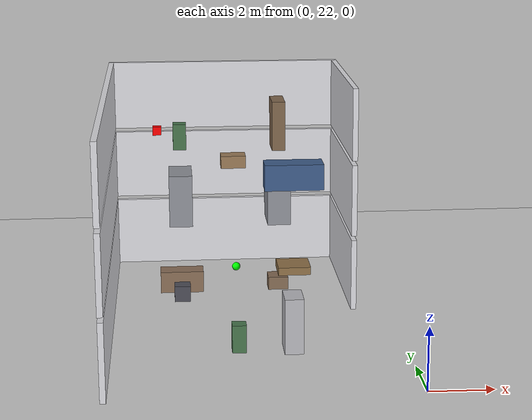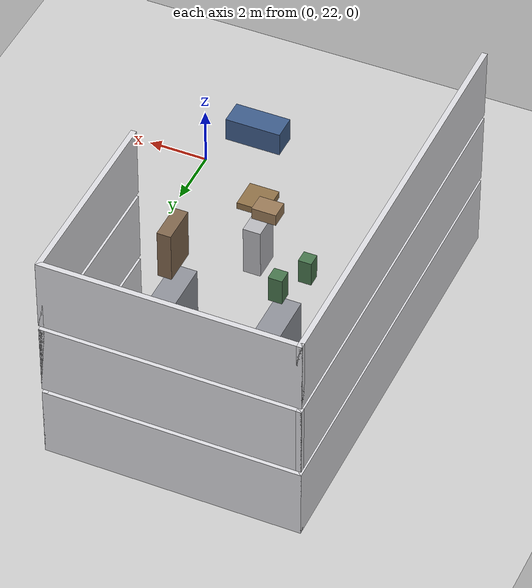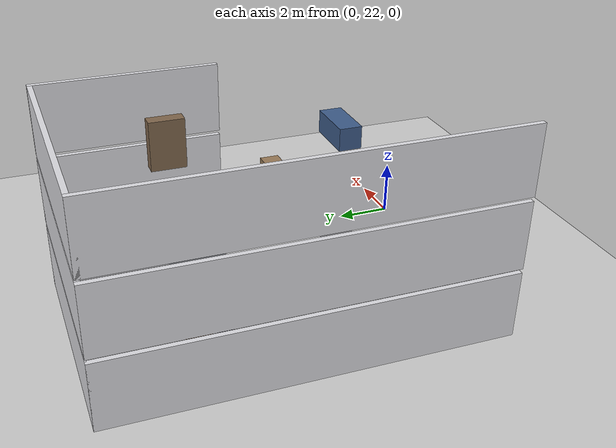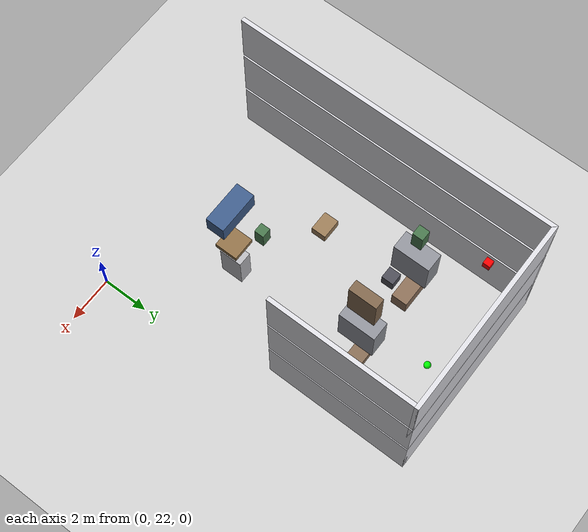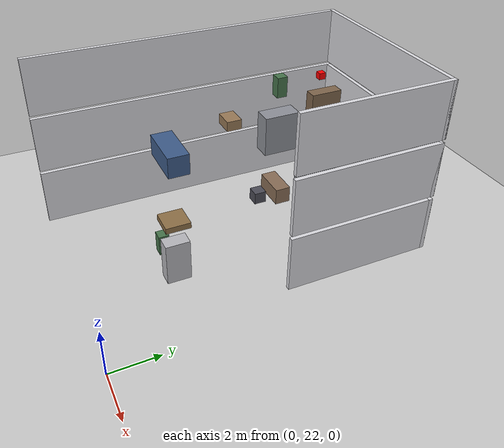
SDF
<sdf version="1.7">
 <world name="generated_world">
  <include><uri>model://sun</uri></include>
  <include><uri>model://ground_plane</uri></include>
  <model name="generated_building">
   <static>true</static>
   <link name="floor_0_room_2_corridor_wall_upper">
    <pose>-1.1900 32.7025 1.2250 0.0000 0.0000 0.0000</pose>
    <collision name="floor_0_room_2_corridor_wall_upper_collision">
     <geometry><box><size>0.1800 6.4150 2.4500</size></box></geometry>
    </collision>
    <visual name="floor_0_room_2_corridor_wall_upper_visual">
     <geometry><box><size>0.1800 6.4150 2.4500</size></box></geometry>
     <material><ambient>0.86 0.86 0.88 1</ambient><diffuse>0.86 0.86 0.88 1</diffuse></material>
    </visual>
    <gravity>false</gravity>
   </link>
   <link name="floor_0_room_2_west_wall">
    <pose>-9.4100 28.8950 1.2250 0.0000 0.0000 0.0000</pose>
    <collision name="floor_0_room_2_west_wall_collision">
     <geometry><box><size>0.1800 14.0300 2.4500</size></box></geometry>
    </collision>
    <visual name="floor_0_room_2_west_wall_visual">
     <geometry><box><size>0.1800 14.0300 2.4500</size></box></geometry>
     <material><ambient>0.86 0.86 0.88 1</ambient><diffuse>0.86 0.86 0.88 1</diffuse></material>
    </visual>
    <gravity>false</gravity>
   </link>
   <link name="floor_0_room_2_north_wall">
    <pose>-5.3000 35.8200 1.2250 0.0000 0.0000 0.0000</pose>
    <collision name="floor_0_room_2_north_wall_collision">
     <geometry><box><size>8.4000 0.1800 2.4500</size></box></geometry>
    </collision>
    <visual name="floor_0_room_2_north_wall_visual">
     <geometry><box><size>8.4000 0.1800 2.4500</size></box></geometry>
     <material><ambient>0.86 0.86 0.88 1</ambient><diffuse>0.86 0.86 0.88 1</diffuse></material>
    </visual>
    <gravity>false</gravity>
   </link>
   <link name="floor_0_room_2_desk">
    <pose>-7.0000 31.9525 0.4500 0.0000 0.0000 0.0000</pose>
    <collision name="floor_0_room_2_desk_collision">
     <geometry><box><size>1.5000 0.7000 0.7500</size></box></geometry>
    </collision>
    <visual name="floor_0_room_2_desk_visual">
     <geometry><box><size>1.5000 0.7000 0.7500</size></box></geometry>
     <material><ambient>0.54 0.43 0.34 1</ambient><diffuse>0.54 0.43 0.34 1</diffuse></material>
    </visual>
    <gravity>false</gravity>
   </link>
   <link name="floor_0_room_2_chair">
    <pose>-7.0000 31.0525 0.2800 0.0000 0.0000 0.0000</pose>
    <collision name="floor_0_room_2_chair_collision">
     <geometry><box><size>0.5500 0.5500 0.5500</size></box></geometry>
    </collision>
    <visual name="floor_0_room_2_chair_visual">
     <geometry><box><size>0.5500 0.5500 0.5500</size></box></geometry>
     <material><ambient>0.30 0.30 0.34 1</ambient><diffuse>0.30 0.30 0.34 1</diffuse></material>
    </visual>
    <gravity>false</gravity>
   </link>
   <link name="floor_0_room_2_cabinet">
    <pose>-3.6000 25.8375 0.9000 0.0000 0.0000 0.0000</pose>
    <collision name="floor_0_room_2_cabinet_collision">
     <geometry><box><size>0.6000 1.0000 1.8000</size></box></geometry>
    </collision>
    <visual name="floor_0_room_2_cabinet_visual">
     <geometry><box><size>0.6000 1.0000 1.8000</size></box></geometry>
     <material><ambient>0.72 0.72 0.74 1</ambient><diffuse>0.72 0.72 0.74 1</diffuse></material>
    </visual>
    <gravity>false</gravity>
   </link>
   <link name="floor_0_room_2_side_table">
    <pose>-3.6000 31.9525 0.3200 0.0000 0.0000 0.0000</pose>
    <collision name="floor_0_room_2_side_table_collision">
     <geometry><box><size>0.7000 0.7000 0.4500</size></box></geometry>
    </collision>
    <visual name="floor_0_room_2_side_table_visual">
     <geometry><box><size>0.7000 0.7000 0.4500</size></box></geometry>
     <material><ambient>0.52 0.42 0.33 1</ambient><diffuse>0.52 0.42 0.33 1</diffuse></material>
    </visual>
    <gravity>false</gravity>
   </link>
   <link name="floor_0_room_2_planter">
    <pose>-5.3000 25.8375 0.4500 0.0000 0.0000 0.0000</pose>
    <collision name="floor_0_room_2_planter_collision">
     <geometry><box><size>0.4500 0.4500 0.9000</size></box></geometry>
    </collision>
    <visual name="floor_0_room_2_planter_visual">
     <geometry><box><size>0.4500 0.4500 0.9000</size></box></geometry>
     <material><ambient>0.28 0.46 0.30 1</ambient><diffuse>0.28 0.46 0.30 1</diffuse></material>
    </visual>
    <gravity>false</gravity>
   </link>
   <link name="floor_1_room_2_corridor_wall_upper">
    <pose>-1.1900 32.7025 3.8250 0.0000 0.0000 0.0000</pose>
    <collision name="floor_1_room_2_corridor_wall_upper_collision">
     <geometry><box><size>0.1800 6.4150 2.4500</size></box></geometry>
    </collision>
    <visual name="floor_1_room_2_corridor_wall_upper_visual">
     <geometry><box><size>0.1800 6.4150 2.4500</size></box></geometry>
     <material><ambient>0.86 0.86 0.88 1</ambient><diffuse>0.86 0.86 0.88 1</diffuse></material>
    </visual>
    <gravity>false</gravity>
   </link>
   <link name="floor_1_room_2_west_wall">
    <pose>-9.4100 28.8950 3.8250 0.0000 0.0000 0.0000</pose>
    <collision name="floor_1_room_2_west_wall_collision">
     <geometry><box><size>0.1800 14.0300 2.4500</size></box></geometry>
    </collision>
    <visual name="floor_1_room_2_west_wall_visual">
     <geometry><box><size>0.1800 14.0300 2.4500</size></box></geometry>
     <material><ambient>0.86 0.86 0.88 1</ambient><diffuse>0.86 0.86 0.88 1</diffuse></material>
    </visual>
    <gravity>false</gravity>
   </link>
   <link name="floor_1_room_2_north_wall">
    <pose>-5.3000 35.8200 3.8250 0.0000 0.0000 0.0000</pose>
    <collision name="floor_1_room_2_north_wall_collision">
     <geometry><box><size>8.4000 0.1800 2.4500</size></box></geometry>
    </collision>
    <visual name="floor_1_room_2_north_wall_visual">
     <geometry><box><size>8.4000 0.1800 2.4500</size></box></geometry>
     <material><ambient>0.86 0.86 0.88 1</ambient><diffuse>0.86 0.86 0.88 1</diffuse></material>
    </visual>
    <gravity>false</gravity>
   </link>
   <link name="floor_1_room_2_rack_a">
    <pose>-7.0000 31.9525 3.5000 0.0000 0.0000 0.0000</pose>
    <collision name="floor_1_room_2_rack_a_collision">
     <geometry><box><size>0.8000 1.6000 1.8000</size></box></geometry>
    </collision>
    <visual name="floor_1_room_2_rack_a_visual">
     <geometry><box><size>0.8000 1.6000 1.8000</size></box></geometry>
     <material><ambient>0.56 0.57 0.60 1</ambient><diffuse>0.56 0.57 0.60 1</diffuse></material>
    </visual>
    <gravity>false</gravity>
   </link>
   <link name="floor_1_room_2_rack_b">
    <pose>-3.6000 31.9525 3.5000 0.0000 0.0000 0.0000</pose>
    <collision name="floor_1_room_2_rack_b_collision">
     <geometry><box><size>0.8000 1.6000 1.8000</size></box></geometry>
    </collision>
    <visual name="floor_1_room_2_rack_b_visual">
     <geometry><box><size>0.8000 1.6000 1.8000</size></box></geometry>
     <material><ambient>0.56 0.57 0.60 1</ambient><diffuse>0.56 0.57 0.60 1</diffuse></material>
    </visual>
    <gravity>false</gravity>
   </link>
   <link name="floor_1_room_2_pallet">
    <pose>-3.6000 25.8375 2.7200 0.0000 0.0000 0.0000</pose>
    <collision name="floor_1_room_2_pallet_collision">
     <geometry><box><size>1.0000 1.0000 0.2400</size></box></geometry>
    </collision>
    <visual name="floor_1_room_2_pallet_visual">
     <geometry><box><size>1.0000 1.0000 0.2400</size></box></geometry>
     <material><ambient>0.56 0.44 0.28 1</ambient><diffuse>0.56 0.44 0.28 1</diffuse></material>
    </visual>
    <gravity>false</gravity>
   </link>
   <link name="floor_2_room_2_corridor_wall_upper">
    <pose>-1.1900 32.7025 6.4250 0.0000 0.0000 0.0000</pose>
    <collision name="floor_2_room_2_corridor_wall_upper_collision">
     <geometry><box><size>0.1800 6.4150 2.4500</size></box></geometry>
    </collision>
    <visual name="floor_2_room_2_corridor_wall_upper_visual">
     <geometry><box><size>0.1800 6.4150 2.4500</size></box></geometry>
     <material><ambient>0.86 0.86 0.88 1</ambient><diffuse>0.86 0.86 0.88 1</diffuse></material>
    </visual>
    <gravity>false</gravity>
   </link>
   <link name="floor_2_room_2_west_wall">
    <pose>-9.4100 28.8950 6.4250 0.0000 0.0000 0.0000</pose>
    <collision name="floor_2_room_2_west_wall_collision">
     <geometry><box><size>0.1800 14.0300 2.4500</size></box></geometry>
    </collision>
    <visual name="floor_2_room_2_west_wall_visual">
     <geometry><box><size>0.1800 14.0300 2.4500</size></box></geometry>
     <material><ambient>0.86 0.86 0.88 1</ambient><diffuse>0.86 0.86 0.88 1</diffuse></material>
    </visual>
    <gravity>false</gravity>
   </link>
   <link name="floor_2_room_2_north_wall">
    <pose>-5.3000 35.8200 6.4250 0.0000 0.0000 0.0000</pose>
    <collision name="floor_2_room_2_north_wall_collision">
     <geometry><box><size>8.4000 0.1800 2.4500</size></box></geometry>
    </collision>
    <visual name="floor_2_room_2_north_wall_visual">
     <geometry><box><size>8.4000 0.1800 2.4500</size></box></geometry>
     <material><ambient>0.86 0.86 0.88 1</ambient><diffuse>0.86 0.86 0.88 1</diffuse></material>
    </visual>
    <gravity>false</gravity>
   </link>
   <link name="floor_2_room_2_sofa_b">
    <pose>-3.6000 25.8375 5.6500 0.0000 0.0000 3.1400</pose>
    <collision name="floor_2_room_2_sofa_b_collision">
     <geometry><box><size>1.8000 0.8000 0.8000</size></box></geometry>
    </collision>
    <visual name="floor_2_room_2_sofa_b_visual">
     <geometry><box><size>1.8000 0.8000 0.8000</size></box></geometry>
     <material><ambient>0.24 0.36 0.54 1</ambient><diffuse>0.24 0.36 0.54 1</diffuse></material>
    </visual>
    <gravity>false</gravity>
   </link>
   <link name="floor_2_room_2_coffee_table">
    <pose>-5.3000 28.8950 5.4500 0.0000 0.0000 0.0000</pose>
    <collision name="floor_2_room_2_coffee_table_collision">
     <geometry><box><size>0.8000 0.6000 0.4000</size></box></geometry>
    </collision>
    <visual name="floor_2_room_2_coffee_table_visual">
     <geometry><box><size>0.8000 0.6000 0.4000</size></box></geometry>
     <material><ambient>0.60 0.48 0.34 1</ambient><diffuse>0.60 0.48 0.34 1</diffuse></material>
    </visual>
    <gravity>false</gravity>
   </link>
   <link name="floor_2_room_2_bookshelf">
    <pose>-3.6000 31.9525 6.0500 0.0000 0.0000 0.0000</pose>
    <collision name="floor_2_room_2_bookshelf_collision">
     <geometry><box><size>0.4500 1.2000 1.7000</size></box></geometry>
    </collision>
    <visual name="floor_2_room_2_bookshelf_visual">
     <geometry><box><size>0.4500 1.2000 1.7000</size></box></geometry>
     <material><ambient>0.50 0.40 0.30 1</ambient><diffuse>0.50 0.40 0.30 1</diffuse></material>
    </visual>
    <gravity>false</gravity>
   </link>
   <link name="floor_2_room_2_planter">
    <pose>-7.0000 31.9525 5.6500 0.0000 0.0000 0.0000</pose>
    <collision name="floor_2_room_2_planter_collision">
     <geometry><box><size>0.4500 0.4500 0.9000</size></box></geometry>
    </collision>
    <visual name="floor_2_room_2_planter_visual">
     <geometry><box><size>0.4500 0.4500 0.9000</size></box></geometry>
     <material><ambient>0.28 0.46 0.30 1</ambient><diffuse>0.28 0.46 0.30 1</diffuse></material>
    </visual>
    <gravity>false</gravity>
   </link>
  </model>
  <model name="distractor_green_sphere_03">
   <static>true</static>
   <pose>-4.956731 34.316984 0.150000 0.000000 0.000000 0.000000</pose>
   <link name="link">
    <collision name="collision"><geometry><sphere><radius>0.150</radius></sphere></geometry></collision>
    <visual name="visual">
     <geometry><sphere><radius>0.150</radius></sphere></geometry>
     <material><ambient>0.0 1.0 0.0 1.0</ambient><diffuse>0.0 1.0 0.0 1.0</diffuse></material>
    </visual>
   </link>
  </model>
  <model name="distractor_red_box_04">
   <static>true</static>
   <pose>-7.787612 34.447775 5.350000 0.000000 0.000000 0.000000</pose>
   <link name="link">
    <collision name="collision">
     <geometry><box><size>0.300000 0.300000 0.300000</size></box></geometry>
    </collision>
    <visual name="visual">
     <geometry><box><size>0.300000 0.300000 0.300000</size></box></geometry>
     <material><ambient>1.0 0.0 0.0 1.0</ambient><diffuse>1.0 0.0 0.0 1.0</diffuse></material>
    </visual>
   </link>
  </model>
 </world>
</sdf>
